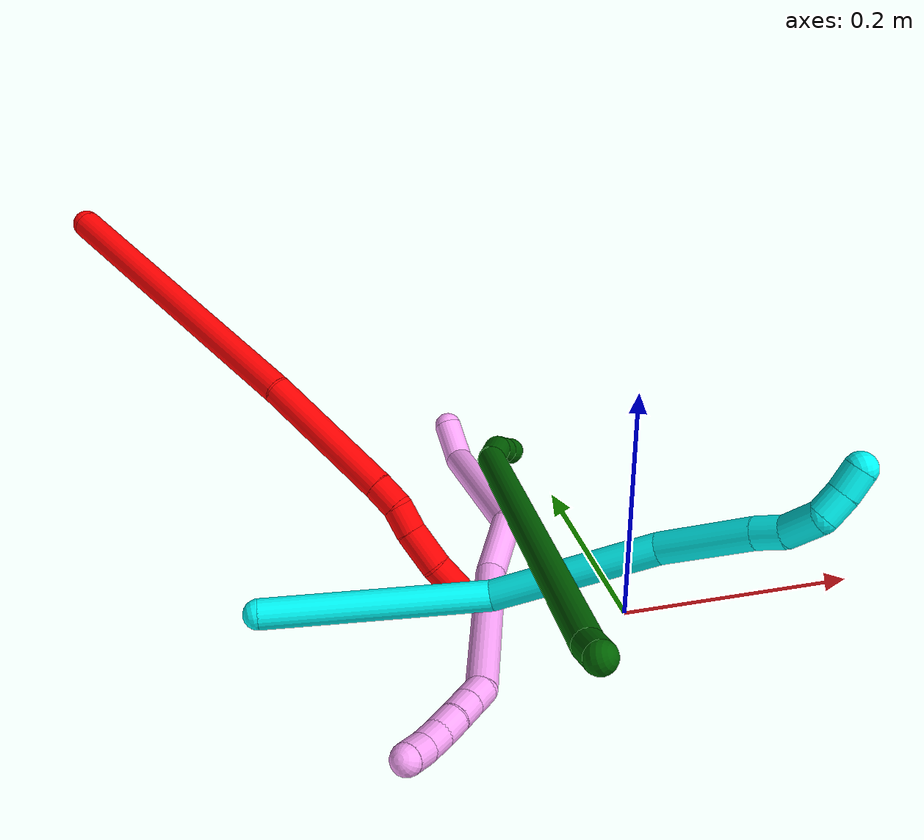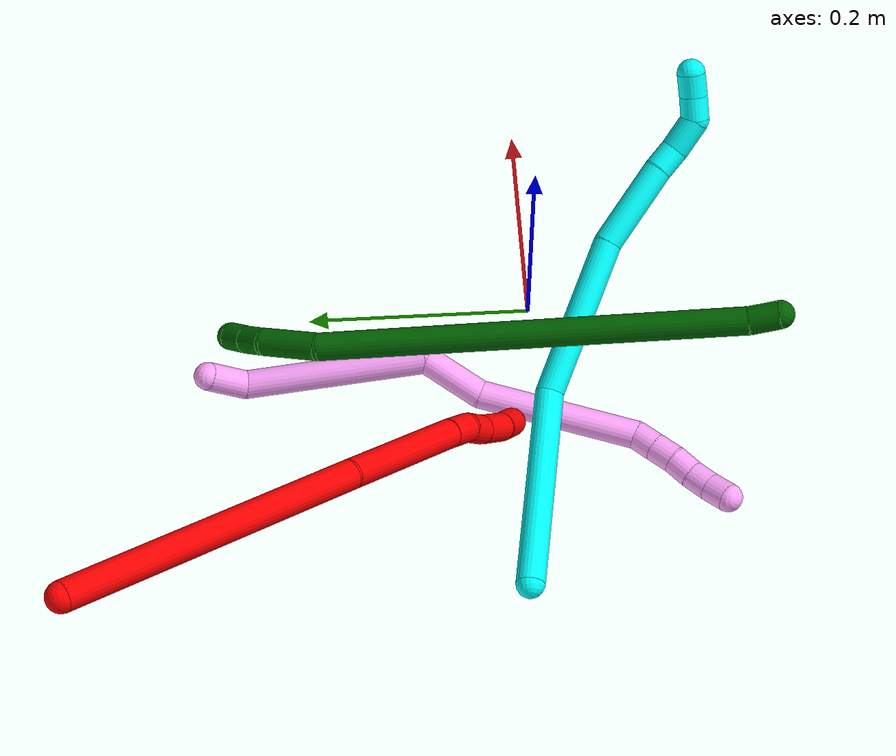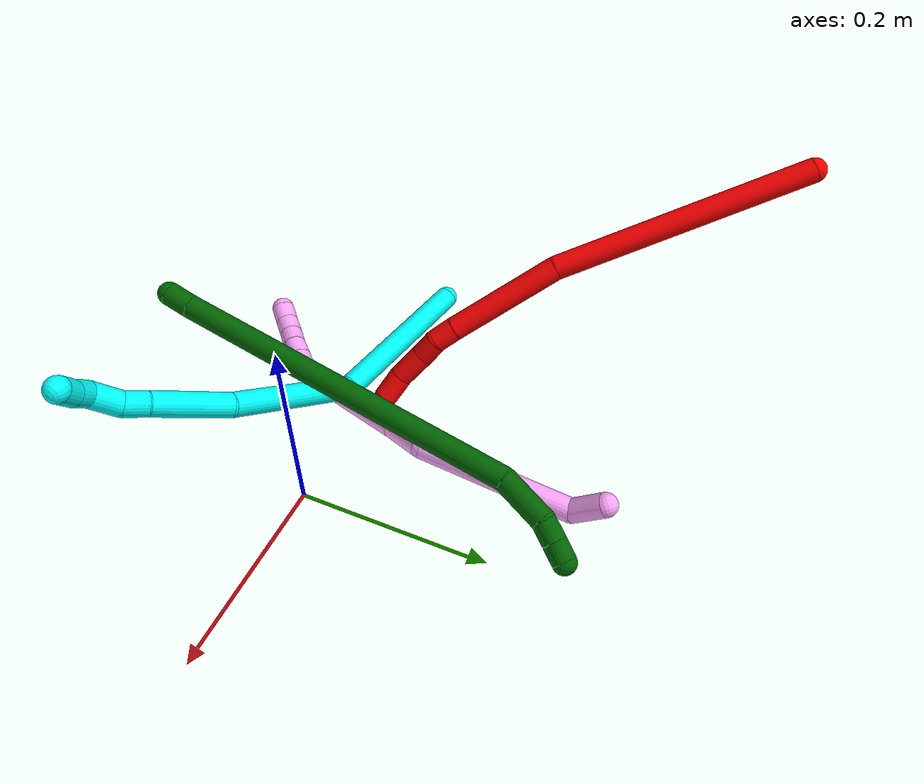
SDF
<sdf version="1.7">
 <world name="default">
  <model name="2">
   <static>0</static>
   <link name="2">
    <collision name="collision-cylinder-e_1_1_4">
     <pose>0.040479 -0.037567 -0.122703 2.8445 0.30556 1.59931</pose>
     <geometry><cylinder><radius>0.0125</radius><length>0.269116</length></cylinder></geometry>
     <surface>
      <friction><ode><mu>1.16</mu><mu2>1.16</mu2><slip1>0</slip1><slip2>0</slip2></ode></friction>
      <contact><ode><kp>1e+06</kp><kd>1</kd><max_vel>0</max_vel><min_depth>0.001</min_depth></ode></contact>
     </surface>
    </collision>
    <visual name="visual-cylinder-e_1_1_4">
     <pose>0.040479 -0.037567 -0.122703 2.8445 0.30556 1.59931</pose>
     <geometry><cylinder><radius>0.0125</radius><length>0.269116</length></cylinder></geometry>
     <material><ambient>1 0 0 1</ambient></material>
    </visual>
    <collision name="collision-cylinder-e_2_4_5">
     <pose>0.092794 -0.083496 -0.303967 2.99975 0.19748 1.89731</pose>
     <geometry><cylinder><radius>0.0125</radius><length>0.120656</length></cylinder></geometry>
     <surface>
      <friction><ode><mu>1.16</mu><mu2>1.16</mu2><slip1>0</slip1><slip2>0</slip2></ode></friction>
      <contact><ode><kp>1e+06</kp><kd>1</kd><max_vel>0</max_vel><min_depth>0.001</min_depth></ode></contact>
     </surface>
    </collision>
    <visual name="visual-cylinder-e_2_4_5">
     <pose>0.092794 -0.083496 -0.303967 2.99975 0.19748 1.89731</pose>
     <geometry><cylinder><radius>0.0125</radius><length>0.120656</length></cylinder></geometry>
     <material><ambient>1 0 0 1</ambient></material>
    </visual>
    <collision name="collision-cylinder-e_3_5_6">
     <pose>0.106157 -0.093345 -0.374198 3.01496 0.129094 1.59006</pose>
     <geometry><cylinder><radius>0.0125</radius><length>0.023725</length></cylinder></geometry>
     <surface>
      <friction><ode><mu>1.16</mu><mu2>1.16</mu2><slip1>0</slip1><slip2>0</slip2></ode></friction>
      <contact><ode><kp>1e+06</kp><kd>1</kd><max_vel>0</max_vel><min_depth>0.001</min_depth></ode></contact>
     </surface>
    </collision>
    <visual name="visual-cylinder-e_3_5_6">
     <pose>0.106157 -0.093345 -0.374198 3.01496 0.129094 1.59006</pose>
     <geometry><cylinder><radius>0.0125</radius><length>0.023725</length></cylinder></geometry>
     <material><ambient>1 0 0 1</ambient></material>
    </visual>
    <collision name="collision-cylinder-e_4_6_7">
     <pose>0.105451 -0.095388 -0.397205 3.09247 -0.194299 -2.64771</pose>
     <geometry><cylinder><radius>0.0125</radius><length>0.023137</length></cylinder></geometry>
     <surface>
      <friction><ode><mu>1.16</mu><mu2>1.16</mu2><slip1>0</slip1><slip2>0</slip2></ode></friction>
      <contact><ode><kp>1e+06</kp><kd>1</kd><max_vel>0</max_vel><min_depth>0.001</min_depth></ode></contact>
     </surface>
    </collision>
    <visual name="visual-cylinder-e_4_6_7">
     <pose>0.105451 -0.095388 -0.397205 3.09247 -0.194299 -2.64771</pose>
     <geometry><cylinder><radius>0.0125</radius><length>0.023137</length></cylinder></geometry>
     <material><ambient>1 0 0 1</ambient></material>
    </visual>
    <collision name="collision-cylinder-e_5_7_8">
     <pose>0.102275 -0.096316 -0.425714 3.12003 -0.054777 -2.39176</pose>
     <geometry><cylinder><radius>0.0125</radius><length>0.034403</length></cylinder></geometry>
     <surface>
      <friction><ode><mu>1.16</mu><mu2>1.16</mu2><slip1>0</slip1><slip2>0</slip2></ode></friction>
      <contact><ode><kp>1e+06</kp><kd>1</kd><max_vel>0</max_vel><min_depth>0.001</min_depth></ode></contact>
     </surface>
    </collision>
    <visual name="visual-cylinder-e_5_7_8">
     <pose>0.102275 -0.096316 -0.425714 3.12003 -0.054777 -2.39176</pose>
     <geometry><cylinder><radius>0.0125</radius><length>0.034403</length></cylinder></geometry>
     <material><ambient>1 0 0 1</ambient></material>
    </visual>
    <collision name="collision-cylinder-e_6_8_2">
     <pose>0.101026 -0.09409 -0.457129 -2.96133 -0.021259 0.234158</pose>
     <geometry><cylinder><radius>0.0125</radius><length>0.028963</length></cylinder></geometry>
     <surface>
      <friction><ode><mu>1.16</mu><mu2>1.16</mu2><slip1>0</slip1><slip2>0</slip2></ode></friction>
      <contact><ode><kp>1e+06</kp><kd>1</kd><max_vel>0</max_vel><min_depth>0.001</min_depth></ode></contact>
     </surface>
    </collision>
    <visual name="visual-cylinder-e_6_8_2">
     <pose>0.101026 -0.09409 -0.457129 -2.96133 -0.021259 0.234158</pose>
     <geometry><cylinder><radius>0.0125</radius><length>0.028963</length></cylinder></geometry>
     <material><ambient>1 0 0 1</ambient></material>
    </visual>
    <collision name="collision-sphere-2">
     <pose>0.100718 -0.091494 -0.471373 0 -0 0</pose>
     <geometry><sphere><radius>0.0125</radius></sphere></geometry>
     <surface>
      <friction><ode><mu>1.16</mu><mu2>1.16</mu2><slip1>0</slip1><slip2>0</slip2></ode></friction>
      <contact><ode><kp>1e+06</kp><kd>1</kd><max_vel>0</max_vel><min_depth>0.001</min_depth></ode></contact>
     </surface>
    </collision>
    <visual name="visual-sphere-2">
     <pose>0.100718 -0.091494 -0.471373 0 -0 0</pose>
     <geometry><sphere><radius>0.0125</radius></sphere></geometry>
     <material><ambient>1 0 0 1</ambient></material>
    </visual>
    <collision name="collision-sphere-4">
     <pose>0.080957 -0.075133 -0.245406 0 -0 0</pose>
     <geometry><sphere><radius>0.0125</radius></sphere></geometry>
     <surface>
      <friction><ode><mu>1.16</mu><mu2>1.16</mu2><slip1>0</slip1><slip2>0</slip2></ode></friction>
      <contact><ode><kp>1e+06</kp><kd>1</kd><max_vel>0</max_vel><min_depth>0.001</min_depth></ode></contact>
     </surface>
    </collision>
    <visual name="visual-sphere-4">
     <pose>0.080957 -0.075133 -0.245406 0 -0 0</pose>
     <geometry><sphere><radius>0.0125</radius></sphere></geometry>
     <material><ambient>1 0 0 1</ambient></material>
    </visual>
    <collision name="collision-sphere-1">
     <geometry><sphere><radius>0.0125</radius></sphere></geometry>
     <surface>
      <friction><ode><mu>1.16</mu><mu2>1.16</mu2><slip1>0</slip1><slip2>0</slip2></ode></friction>
      <contact><ode><kp>1e+06</kp><kd>1</kd><max_vel>0</max_vel><min_depth>0.001</min_depth></ode></contact>
     </surface>
    </collision>
    <visual name="visual-sphere-1">
     <geometry><sphere><radius>0.0125</radius></sphere></geometry>
     <material><ambient>1 0 0 1</ambient></material>
    </visual>
    <collision name="collision-sphere-8">
     <pose>0.101333 -0.096686 -0.442886 0 -0 0</pose>
     <geometry><sphere><radius>0.0125</radius></sphere></geometry>
     <surface>
      <friction><ode><mu>1.16</mu><mu2>1.16</mu2><slip1>0</slip1><slip2>0</slip2></ode></friction>
      <contact><ode><kp>1e+06</kp><kd>1</kd><max_vel>0</max_vel><min_depth>0.001</min_depth></ode></contact>
     </surface>
    </collision>
    <visual name="visual-sphere-8">
     <pose>0.101333 -0.096686 -0.442886 0 -0 0</pose>
     <geometry><sphere><radius>0.0125</radius></sphere></geometry>
     <material><ambient>1 0 0 1</ambient></material>
    </visual>
    <collision name="collision-sphere-5">
     <pose>0.10463 -0.091859 -0.362529 0 -0 0</pose>
     <geometry><sphere><radius>0.0125</radius></sphere></geometry>
     <surface>
      <friction><ode><mu>1.16</mu><mu2>1.16</mu2><slip1>0</slip1><slip2>0</slip2></ode></friction>
      <contact><ode><kp>1e+06</kp><kd>1</kd><max_vel>0</max_vel><min_depth>0.001</min_depth></ode></contact>
     </surface>
    </collision>
    <visual name="visual-sphere-5">
     <pose>0.10463 -0.091859 -0.362529 0 -0 0</pose>
     <geometry><sphere><radius>0.0125</radius></sphere></geometry>
     <material><ambient>1 0 0 1</ambient></material>
    </visual>
    <collision name="collision-sphere-6">
     <pose>0.107684 -0.09483 -0.385868 0 -0 0</pose>
     <geometry><sphere><radius>0.0125</radius></sphere></geometry>
     <surface>
      <friction><ode><mu>1.16</mu><mu2>1.16</mu2><slip1>0</slip1><slip2>0</slip2></ode></friction>
      <contact><ode><kp>1e+06</kp><kd>1</kd><max_vel>0</max_vel><min_depth>0.001</min_depth></ode></contact>
     </surface>
    </collision>
    <visual name="visual-sphere-6">
     <pose>0.107684 -0.09483 -0.385868 0 -0 0</pose>
     <geometry><sphere><radius>0.0125</radius></sphere></geometry>
     <material><ambient>1 0 0 1</ambient></material>
    </visual>
    <collision name="collision-sphere-7">
     <pose>0.103217 -0.095945 -0.408542 0 -0 0</pose>
     <geometry><sphere><radius>0.0125</radius></sphere></geometry>
     <surface>
      <friction><ode><mu>1.16</mu><mu2>1.16</mu2><slip1>0</slip1><slip2>0</slip2></ode></friction>
      <contact><ode><kp>1e+06</kp><kd>1</kd><max_vel>0</max_vel><min_depth>0.001</min_depth></ode></contact>
     </surface>
    </collision>
    <visual name="visual-sphere-7">
     <pose>0.103217 -0.095945 -0.408542 0 -0 0</pose>
     <geometry><sphere><radius>0.0125</radius></sphere></geometry>
     <material><ambient>1 0 0 1</ambient></material>
    </visual>
    <inertial>
     <pose>0.066985 -0.061289 -0.231301 0 -0 0</pose>
     <mass>0.5</mass>
     <inertia>
      <ixx>0.001611</ixx>
      <ixy>0</ixy>
      <ixz>0</ixz>
      <iyy>0.001933</iyy>
      <iyz>0</iyz>
      <izz>-8.1e-05</izz>
     </inertia>
    </inertial>
   </link>
   <pose>-0.397385 0.3776 0.244294 -0.348209 -0.789284 -0.330621</pose>
  </model>
  <model name="3">
   <static>0</static>
   <link name="3">
    <collision name="collision-cylinder-e_1_1_4">
     <pose>0.011995 0.010157 0.090344 -0.111955 0.131186 -0.007362</pose>
     <geometry><cylinder><radius>0.0125</radius><length>0.183403</length></cylinder></geometry>
     <surface>
      <friction><ode><mu>1.16</mu><mu2>1.16</mu2><slip1>0</slip1><slip2>0</slip2></ode></friction>
      <contact><ode><kp>1e+06</kp><kd>1</kd><max_vel>0</max_vel><min_depth>0.001</min_depth></ode></contact>
     </surface>
    </collision>
    <visual name="visual-cylinder-e_1_1_4">
     <pose>0.011995 0.010157 0.090344 -0.111955 0.131186 -0.007362</pose>
     <geometry><cylinder><radius>0.0125</radius><length>0.183403</length></cylinder></geometry>
     <material><ambient>0.003922 1 0.996078 1</ambient></material>
    </visual>
    <collision name="collision-cylinder-e_2_4_5">
     <pose>0.051692 -0.000847 0.24241 0.330285 0.401487 0.067799</pose>
     <geometry><cylinder><radius>0.0125</radius><length>0.141771</length></cylinder></geometry>
     <surface>
      <friction><ode><mu>1.16</mu><mu2>1.16</mu2><slip1>0</slip1><slip2>0</slip2></ode></friction>
      <contact><ode><kp>1e+06</kp><kd>1</kd><max_vel>0</max_vel><min_depth>0.001</min_depth></ode></contact>
     </surface>
    </collision>
    <visual name="visual-cylinder-e_2_4_5">
     <pose>0.051692 -0.000847 0.24241 0.330285 0.401487 0.067799</pose>
     <geometry><cylinder><radius>0.0125</radius><length>0.141771</length></cylinder></geometry>
     <material><ambient>0.003922 1 0.996078 1</ambient></material>
    </visual>
    <collision name="collision-cylinder-e_3_5_6">
     <pose>0.102412 -0.033984 0.333163 0.391268 0.63253 0.12952</pose>
     <geometry><cylinder><radius>0.0125</radius><length>0.077874</length></cylinder></geometry>
     <surface>
      <friction><ode><mu>1.16</mu><mu2>1.16</mu2><slip1>0</slip1><slip2>0</slip2></ode></friction>
      <contact><ode><kp>1e+06</kp><kd>1</kd><max_vel>0</max_vel><min_depth>0.001</min_depth></ode></contact>
     </surface>
    </collision>
    <visual name="visual-cylinder-e_3_5_6">
     <pose>0.102412 -0.033984 0.333163 0.391268 0.63253 0.12952</pose>
     <geometry><cylinder><radius>0.0125</radius><length>0.077874</length></cylinder></geometry>
     <material><ambient>0.003922 1 0.996078 1</ambient></material>
    </visual>
    <collision name="collision-cylinder-e_4_6_7">
     <pose>0.133197 -0.048636 0.370637 0.306805 0.719841 0.116238</pose>
     <geometry><cylinder><radius>0.0125</radius><length>0.02356</length></cylinder></geometry>
     <surface>
      <friction><ode><mu>1.16</mu><mu2>1.16</mu2><slip1>0</slip1><slip2>0</slip2></ode></friction>
      <contact><ode><kp>1e+06</kp><kd>1</kd><max_vel>0</max_vel><min_depth>0.001</min_depth></ode></contact>
     </surface>
    </collision>
    <visual name="visual-cylinder-e_4_6_7">
     <pose>0.133197 -0.048636 0.370637 0.306805 0.719841 0.116238</pose>
     <geometry><cylinder><radius>0.0125</radius><length>0.02356</length></cylinder></geometry>
     <material><ambient>0.003922 1 0.996078 1</ambient></material>
    </visual>
    <collision name="collision-cylinder-e_5_7_8">
     <pose>0.149979 -0.0601 0.388593 0.745919 0.608142 0.244341</pose>
     <geometry><cylinder><radius>0.0125</radius><length>0.031561</length></cylinder></geometry>
     <surface>
      <friction><ode><mu>1.16</mu><mu2>1.16</mu2><slip1>0</slip1><slip2>0</slip2></ode></friction>
      <contact><ode><kp>1e+06</kp><kd>1</kd><max_vel>0</max_vel><min_depth>0.001</min_depth></ode></contact>
     </surface>
    </collision>
    <visual name="visual-cylinder-e_5_7_8">
     <pose>0.149979 -0.0601 0.388593 0.745919 0.608142 0.244341</pose>
     <geometry><cylinder><radius>0.0125</radius><length>0.031561</length></cylinder></geometry>
     <material><ambient>0.003922 1 0.996078 1</ambient></material>
    </visual>
    <collision name="collision-cylinder-e_6_8_9">
     <pose>0.158289 -0.075552 0.406345 0.679995 -0.066593 -0.023564</pose>
     <geometry><cylinder><radius>0.0125</radius><length>0.02124</length></cylinder></geometry>
     <surface>
      <friction><ode><mu>1.16</mu><mu2>1.16</mu2><slip1>0</slip1><slip2>0</slip2></ode></friction>
      <contact><ode><kp>1e+06</kp><kd>1</kd><max_vel>0</max_vel><min_depth>0.001</min_depth></ode></contact>
     </surface>
    </collision>
    <visual name="visual-cylinder-e_6_8_9">
     <pose>0.158289 -0.075552 0.406345 0.679995 -0.066593 -0.023564</pose>
     <geometry><cylinder><radius>0.0125</radius><length>0.02124</length></cylinder></geometry>
     <material><ambient>0.003922 1 0.996078 1</ambient></material>
    </visual>
    <collision name="collision-cylinder-e_7_9_2">
     <pose>0.156534 -0.089636 0.421645 0.810312 -0.101932 -0.043748</pose>
     <geometry><cylinder><radius>0.0125</radius><length>0.020592</length></cylinder></geometry>
     <surface>
      <friction><ode><mu>1.16</mu><mu2>1.16</mu2><slip1>0</slip1><slip2>0</slip2></ode></friction>
      <contact><ode><kp>1e+06</kp><kd>1</kd><max_vel>0</max_vel><min_depth>0.001</min_depth></ode></contact>
     </surface>
    </collision>
    <visual name="visual-cylinder-e_7_9_2">
     <pose>0.156534 -0.089636 0.421645 0.810312 -0.101932 -0.043748</pose>
     <geometry><cylinder><radius>0.0125</radius><length>0.020592</length></cylinder></geometry>
     <material><ambient>0.003922 1 0.996078 1</ambient></material>
    </visual>
    <collision name="collision-sphere-2">
     <pose>0.155487 -0.097057 0.428705 0 -0 0</pose>
     <geometry><sphere><radius>0.0125</radius></sphere></geometry>
     <surface>
      <friction><ode><mu>1.16</mu><mu2>1.16</mu2><slip1>0</slip1><slip2>0</slip2></ode></friction>
      <contact><ode><kp>1e+06</kp><kd>1</kd><max_vel>0</max_vel><min_depth>0.001</min_depth></ode></contact>
     </surface>
    </collision>
    <visual name="visual-sphere-2">
     <pose>0.155487 -0.097057 0.428705 0 -0 0</pose>
     <geometry><sphere><radius>0.0125</radius></sphere></geometry>
     <material><ambient>0.003922 1 0.996078 1</ambient></material>
    </visual>
    <collision name="collision-sphere-9">
     <pose>0.157582 -0.082215 0.414585 0 -0 0</pose>
     <geometry><sphere><radius>0.0125</radius></sphere></geometry>
     <surface>
      <friction><ode><mu>1.16</mu><mu2>1.16</mu2><slip1>0</slip1><slip2>0</slip2></ode></friction>
      <contact><ode><kp>1e+06</kp><kd>1</kd><max_vel>0</max_vel><min_depth>0.001</min_depth></ode></contact>
     </surface>
    </collision>
    <visual name="visual-sphere-9">
     <pose>0.157582 -0.082215 0.414585 0 -0 0</pose>
     <geometry><sphere><radius>0.0125</radius></sphere></geometry>
     <material><ambient>0.003922 1 0.996078 1</ambient></material>
    </visual>
    <collision name="collision-sphere-4">
     <pose>0.023991 0.020314 0.180688 0 -0 0</pose>
     <geometry><sphere><radius>0.0125</radius></sphere></geometry>
     <surface>
      <friction><ode><mu>1.16</mu><mu2>1.16</mu2><slip1>0</slip1><slip2>0</slip2></ode></friction>
      <contact><ode><kp>1e+06</kp><kd>1</kd><max_vel>0</max_vel><min_depth>0.001</min_depth></ode></contact>
     </surface>
    </collision>
    <visual name="visual-sphere-4">
     <pose>0.023991 0.020314 0.180688 0 -0 0</pose>
     <geometry><sphere><radius>0.0125</radius></sphere></geometry>
     <material><ambient>0.003922 1 0.996078 1</ambient></material>
    </visual>
    <collision name="collision-sphere-1">
     <geometry><sphere><radius>0.0125</radius></sphere></geometry>
     <surface>
      <friction><ode><mu>1.16</mu><mu2>1.16</mu2><slip1>0</slip1><slip2>0</slip2></ode></friction>
      <contact><ode><kp>1e+06</kp><kd>1</kd><max_vel>0</max_vel><min_depth>0.001</min_depth></ode></contact>
     </surface>
    </collision>
    <visual name="visual-sphere-1">
     <geometry><sphere><radius>0.0125</radius></sphere></geometry>
     <material><ambient>0.003922 1 0.996078 1</ambient></material>
    </visual>
    <collision name="collision-sphere-8">
     <pose>0.158995 -0.068889 0.398106 0 -0 0</pose>
     <geometry><sphere><radius>0.0125</radius></sphere></geometry>
     <surface>
      <friction><ode><mu>1.16</mu><mu2>1.16</mu2><slip1>0</slip1><slip2>0</slip2></ode></friction>
      <contact><ode><kp>1e+06</kp><kd>1</kd><max_vel>0</max_vel><min_depth>0.001</min_depth></ode></contact>
     </surface>
    </collision>
    <visual name="visual-sphere-8">
     <pose>0.158995 -0.068889 0.398106 0 -0 0</pose>
     <geometry><sphere><radius>0.0125</radius></sphere></geometry>
     <material><ambient>0.003922 1 0.996078 1</ambient></material>
    </visual>
    <collision name="collision-sphere-5">
     <pose>0.079393 -0.022008 0.304132 0 -0 0</pose>
     <geometry><sphere><radius>0.0125</radius></sphere></geometry>
     <surface>
      <friction><ode><mu>1.16</mu><mu2>1.16</mu2><slip1>0</slip1><slip2>0</slip2></ode></friction>
      <contact><ode><kp>1e+06</kp><kd>1</kd><max_vel>0</max_vel><min_depth>0.001</min_depth></ode></contact>
     </surface>
    </collision>
    <visual name="visual-sphere-5">
     <pose>0.079393 -0.022008 0.304132 0 -0 0</pose>
     <geometry><sphere><radius>0.0125</radius></sphere></geometry>
     <material><ambient>0.003922 1 0.996078 1</ambient></material>
    </visual>
    <collision name="collision-sphere-6">
     <pose>0.125431 -0.045961 0.362194 0 -0 0</pose>
     <geometry><sphere><radius>0.0125</radius></sphere></geometry>
     <surface>
      <friction><ode><mu>1.16</mu><mu2>1.16</mu2><slip1>0</slip1><slip2>0</slip2></ode></friction>
      <contact><ode><kp>1e+06</kp><kd>1</kd><max_vel>0</max_vel><min_depth>0.001</min_depth></ode></contact>
     </surface>
    </collision>
    <visual name="visual-sphere-6">
     <pose>0.125431 -0.045961 0.362194 0 -0 0</pose>
     <geometry><sphere><radius>0.0125</radius></sphere></geometry>
     <material><ambient>0.003922 1 0.996078 1</ambient></material>
    </visual>
    <collision name="collision-sphere-7">
     <pose>0.140963 -0.051311 0.379081 0 -0 0</pose>
     <geometry><sphere><radius>0.0125</radius></sphere></geometry>
     <surface>
      <friction><ode><mu>1.16</mu><mu2>1.16</mu2><slip1>0</slip1><slip2>0</slip2></ode></friction>
      <contact><ode><kp>1e+06</kp><kd>1</kd><max_vel>0</max_vel><min_depth>0.001</min_depth></ode></contact>
     </surface>
    </collision>
    <visual name="visual-sphere-7">
     <pose>0.140963 -0.051311 0.379081 0 -0 0</pose>
     <geometry><sphere><radius>0.0125</radius></sphere></geometry>
     <material><ambient>0.003922 1 0.996078 1</ambient></material>
    </visual>
    <inertial>
     <pose>0.063921 -0.014794 0.230381 0 -0 0</pose>
     <mass>0.5</mass>
     <inertia>
      <ixx>0.00081</ixx>
      <ixy>0</ixy>
      <ixz>0</ixz>
      <iyy>0.000806</iyy>
      <iyz>0</iyz>
      <izz>-0.000125</izz>
     </inertia>
    </inertial>
   </link>
   <pose>-0.297037 0.022958 0.034062 -1.41952 -0.022528 -1.60954</pose>
  </model>
  <model name="4">
   <static>0</static>
   <link name="4">
    <collision name="collision-cylinder-e_1_1_4">
     <pose>-0.009699 -0.016584 -0.001418 1.6561 -0.527582 -0.572189</pose>
     <geometry><cylinder><radius>0.0125</radius><length>0.038529</length></cylinder></geometry>
     <surface>
      <friction><ode><mu>1.16</mu><mu2>1.16</mu2><slip1>0</slip1><slip2>0</slip2></ode></friction>
      <contact><ode><kp>1e+06</kp><kd>1</kd><max_vel>0</max_vel><min_depth>0.001</min_depth></ode></contact>
     </surface>
    </collision>
    <visual name="visual-cylinder-e_1_1_4">
     <pose>-0.009699 -0.016584 -0.001418 1.6561 -0.527582 -0.572189</pose>
     <geometry><cylinder><radius>0.0125</radius><length>0.038529</length></cylinder></geometry>
     <material><ambient>1 0.65098 0.996078 1</ambient></material>
    </visual>
    <collision name="collision-cylinder-e_2_4_5">
     <pose>-0.072358 -0.065698 -0.054284 2.57777 -0.716039 -1.82411</pose>
     <geometry><cylinder><radius>0.0125</radius><length>0.161368</length></cylinder></geometry>
     <surface>
      <friction><ode><mu>1.16</mu><mu2>1.16</mu2><slip1>0</slip1><slip2>0</slip2></ode></friction>
      <contact><ode><kp>1e+06</kp><kd>1</kd><max_vel>0</max_vel><min_depth>0.001</min_depth></ode></contact>
     </surface>
    </collision>
    <visual name="visual-cylinder-e_2_4_5">
     <pose>-0.072358 -0.065698 -0.054284 2.57777 -0.716039 -1.82411</pose>
     <geometry><cylinder><radius>0.0125</radius><length>0.161368</length></cylinder></geometry>
     <material><ambient>1 0.65098 0.996078 1</ambient></material>
    </visual>
    <collision name="collision-cylinder-e_3_5_6">
     <pose>-0.128258 -0.122017 -0.120862 2.13729 -0.103875 -0.188781</pose>
     <geometry><cylinder><radius>0.0125</radius><length>0.056692</length></cylinder></geometry>
     <surface>
      <friction><ode><mu>1.16</mu><mu2>1.16</mu2><slip1>0</slip1><slip2>0</slip2></ode></friction>
      <contact><ode><kp>1e+06</kp><kd>1</kd><max_vel>0</max_vel><min_depth>0.001</min_depth></ode></contact>
     </surface>
    </collision>
    <visual name="visual-cylinder-e_3_5_6">
     <pose>-0.128258 -0.122017 -0.120862 2.13729 -0.103875 -0.188781</pose>
     <geometry><cylinder><radius>0.0125</radius><length>0.056692</length></cylinder></geometry>
     <material><ambient>1 0.65098 0.996078 1</ambient></material>
    </visual>
    <collision name="collision-cylinder-e_4_6_7">
     <pose>-0.156318 -0.191676 -0.183775 2.37661 -0.362501 -0.854887</pose>
     <geometry><cylinder><radius>0.0125</radius><length>0.141679</length></cylinder></geometry>
     <surface>
      <friction><ode><mu>1.16</mu><mu2>1.16</mu2><slip1>0</slip1><slip2>0</slip2></ode></friction>
      <contact><ode><kp>1e+06</kp><kd>1</kd><max_vel>0</max_vel><min_depth>0.001</min_depth></ode></contact>
     </surface>
    </collision>
    <visual name="visual-cylinder-e_4_6_7">
     <pose>-0.156318 -0.191676 -0.183775 2.37661 -0.362501 -0.854887</pose>
     <geometry><cylinder><radius>0.0125</radius><length>0.141679</length></cylinder></geometry>
     <material><ambient>1 0.65098 0.996078 1</ambient></material>
    </visual>
    <collision name="collision-cylinder-e_5_7_8">
     <pose>-0.180814 -0.243049 -0.240299 2.57969 0.060431 0.208708</pose>
     <geometry><cylinder><radius>0.0125</radius><length>0.020698</length></cylinder></geometry>
     <surface>
      <friction><ode><mu>1.16</mu><mu2>1.16</mu2><slip1>0</slip1><slip2>0</slip2></ode></friction>
      <contact><ode><kp>1e+06</kp><kd>1</kd><max_vel>0</max_vel><min_depth>0.001</min_depth></ode></contact>
     </surface>
    </collision>
    <visual name="visual-cylinder-e_5_7_8">
     <pose>-0.180814 -0.243049 -0.240299 2.57969 0.060431 0.208708</pose>
     <geometry><cylinder><radius>0.0125</radius><length>0.020698</length></cylinder></geometry>
     <material><ambient>1 0.65098 0.996078 1</ambient></material>
    </visual>
    <collision name="collision-cylinder-e_6_8_9">
     <pose>-0.179653 -0.254057 -0.25771 2.57589 0.052108 0.178847</pose>
     <geometry><cylinder><radius>0.0125</radius><length>0.020566</length></cylinder></geometry>
     <surface>
      <friction><ode><mu>1.16</mu><mu2>1.16</mu2><slip1>0</slip1><slip2>0</slip2></ode></friction>
      <contact><ode><kp>1e+06</kp><kd>1</kd><max_vel>0</max_vel><min_depth>0.001</min_depth></ode></contact>
     </surface>
    </collision>
    <visual name="visual-cylinder-e_6_8_9">
     <pose>-0.179653 -0.254057 -0.25771 2.57589 0.052108 0.178847</pose>
     <geometry><cylinder><radius>0.0125</radius><length>0.020566</length></cylinder></geometry>
     <material><ambient>1 0.65098 0.996078 1</ambient></material>
    </visual>
    <collision name="collision-cylinder-e_7_9_10">
     <pose>-0.177576 -0.265763 -0.274329 2.47913 0.151674 0.434897</pose>
     <geometry><cylinder><radius>0.0125</radius><length>0.0204</length></cylinder></geometry>
     <surface>
      <friction><ode><mu>1.16</mu><mu2>1.16</mu2><slip1>0</slip1><slip2>0</slip2></ode></friction>
      <contact><ode><kp>1e+06</kp><kd>1</kd><max_vel>0</max_vel><min_depth>0.001</min_depth></ode></contact>
     </surface>
    </collision>
    <visual name="visual-cylinder-e_7_9_10">
     <pose>-0.177576 -0.265763 -0.274329 2.47913 0.151674 0.434897</pose>
     <geometry><cylinder><radius>0.0125</radius><length>0.0204</length></cylinder></geometry>
     <material><ambient>1 0.65098 0.996078 1</ambient></material>
    </visual>
    <collision name="collision-cylinder-e_8_10_11">
     <pose>-0.175054 -0.27699 -0.290902 2.61392 0.097965 0.35904</pose>
     <geometry><cylinder><radius>0.0125</radius><length>0.020056</length></cylinder></geometry>
     <surface>
      <friction><ode><mu>1.16</mu><mu2>1.16</mu2><slip1>0</slip1><slip2>0</slip2></ode></friction>
      <contact><ode><kp>1e+06</kp><kd>1</kd><max_vel>0</max_vel><min_depth>0.001</min_depth></ode></contact>
     </surface>
    </collision>
    <visual name="visual-cylinder-e_8_10_11">
     <pose>-0.175054 -0.27699 -0.290902 2.61392 0.097965 0.35904</pose>
     <geometry><cylinder><radius>0.0125</radius><length>0.020056</length></cylinder></geometry>
     <material><ambient>1 0.65098 0.996078 1</ambient></material>
    </visual>
    <collision name="collision-cylinder-e_9_11_2">
     <pose>-0.173317 -0.285724 -0.308787 2.76078 0.075722 0.388117</pose>
     <geometry><cylinder><radius>0.0125</radius><length>0.020013</length></cylinder></geometry>
     <surface>
      <friction><ode><mu>1.16</mu><mu2>1.16</mu2><slip1>0</slip1><slip2>0</slip2></ode></friction>
      <contact><ode><kp>1e+06</kp><kd>1</kd><max_vel>0</max_vel><min_depth>0.001</min_depth></ode></contact>
     </surface>
    </collision>
    <visual name="visual-cylinder-e_9_11_2">
     <pose>-0.173317 -0.285724 -0.308787 2.76078 0.075722 0.388117</pose>
     <geometry><cylinder><radius>0.0125</radius><length>0.020013</length></cylinder></geometry>
     <material><ambient>1 0.65098 0.996078 1</ambient></material>
    </visual>
    <collision name="collision-sphere-2">
     <pose>-0.17256 -0.289432 -0.31805 0 -0 0</pose>
     <geometry><sphere><radius>0.0125</radius></sphere></geometry>
     <surface>
      <friction><ode><mu>1.16</mu><mu2>1.16</mu2><slip1>0</slip1><slip2>0</slip2></ode></friction>
      <contact><ode><kp>1e+06</kp><kd>1</kd><max_vel>0</max_vel><min_depth>0.001</min_depth></ode></contact>
     </surface>
    </collision>
    <visual name="visual-sphere-2">
     <pose>-0.17256 -0.289432 -0.31805 0 -0 0</pose>
     <geometry><sphere><radius>0.0125</radius></sphere></geometry>
     <material><ambient>1 0.65098 0.996078 1</ambient></material>
    </visual>
    <collision name="collision-sphere-11">
     <pose>-0.174074 -0.282015 -0.299524 0 -0 0</pose>
     <geometry><sphere><radius>0.0125</radius></sphere></geometry>
     <surface>
      <friction><ode><mu>1.16</mu><mu2>1.16</mu2><slip1>0</slip1><slip2>0</slip2></ode></friction>
      <contact><ode><kp>1e+06</kp><kd>1</kd><max_vel>0</max_vel><min_depth>0.001</min_depth></ode></contact>
     </surface>
    </collision>
    <visual name="visual-sphere-11">
     <pose>-0.174074 -0.282015 -0.299524 0 -0 0</pose>
     <geometry><sphere><radius>0.0125</radius></sphere></geometry>
     <material><ambient>1 0.65098 0.996078 1</ambient></material>
    </visual>
    <collision name="collision-sphere-10">
     <pose>-0.176035 -0.271965 -0.28228 0 -0 0</pose>
     <geometry><sphere><radius>0.0125</radius></sphere></geometry>
     <surface>
      <friction><ode><mu>1.16</mu><mu2>1.16</mu2><slip1>0</slip1><slip2>0</slip2></ode></friction>
      <contact><ode><kp>1e+06</kp><kd>1</kd><max_vel>0</max_vel><min_depth>0.001</min_depth></ode></contact>
     </surface>
    </collision>
    <visual name="visual-sphere-10">
     <pose>-0.176035 -0.271965 -0.28228 0 -0 0</pose>
     <geometry><sphere><radius>0.0125</radius></sphere></geometry>
     <material><ambient>1 0.65098 0.996078 1</ambient></material>
    </visual>
    <collision name="collision-sphere-9">
     <pose>-0.179118 -0.259562 -0.266379 0 -0 0</pose>
     <geometry><sphere><radius>0.0125</radius></sphere></geometry>
     <surface>
      <friction><ode><mu>1.16</mu><mu2>1.16</mu2><slip1>0</slip1><slip2>0</slip2></ode></friction>
      <contact><ode><kp>1e+06</kp><kd>1</kd><max_vel>0</max_vel><min_depth>0.001</min_depth></ode></contact>
     </surface>
    </collision>
    <visual name="visual-sphere-9">
     <pose>-0.179118 -0.259562 -0.266379 0 -0 0</pose>
     <geometry><sphere><radius>0.0125</radius></sphere></geometry>
     <material><ambient>1 0.65098 0.996078 1</ambient></material>
    </visual>
    <collision name="collision-sphere-4">
     <pose>-0.019397 -0.033169 -0.002836 0 -0 0</pose>
     <geometry><sphere><radius>0.0125</radius></sphere></geometry>
     <surface>
      <friction><ode><mu>1.16</mu><mu2>1.16</mu2><slip1>0</slip1><slip2>0</slip2></ode></friction>
      <contact><ode><kp>1e+06</kp><kd>1</kd><max_vel>0</max_vel><min_depth>0.001</min_depth></ode></contact>
     </surface>
    </collision>
    <visual name="visual-sphere-4">
     <pose>-0.019397 -0.033169 -0.002836 0 -0 0</pose>
     <geometry><sphere><radius>0.0125</radius></sphere></geometry>
     <material><ambient>1 0.65098 0.996078 1</ambient></material>
    </visual>
    <collision name="collision-sphere-1">
     <geometry><sphere><radius>0.0125</radius></sphere></geometry>
     <surface>
      <friction><ode><mu>1.16</mu><mu2>1.16</mu2><slip1>0</slip1><slip2>0</slip2></ode></friction>
      <contact><ode><kp>1e+06</kp><kd>1</kd><max_vel>0</max_vel><min_depth>0.001</min_depth></ode></contact>
     </surface>
    </collision>
    <visual name="visual-sphere-1">
     <geometry><sphere><radius>0.0125</radius></sphere></geometry>
     <material><ambient>1 0.65098 0.996078 1</ambient></material>
    </visual>
    <collision name="collision-sphere-8">
     <pose>-0.180189 -0.248553 -0.249041 0 -0 0</pose>
     <geometry><sphere><radius>0.0125</radius></sphere></geometry>
     <surface>
      <friction><ode><mu>1.16</mu><mu2>1.16</mu2><slip1>0</slip1><slip2>0</slip2></ode></friction>
      <contact><ode><kp>1e+06</kp><kd>1</kd><max_vel>0</max_vel><min_depth>0.001</min_depth></ode></contact>
     </surface>
    </collision>
    <visual name="visual-sphere-8">
     <pose>-0.180189 -0.248553 -0.249041 0 -0 0</pose>
     <geometry><sphere><radius>0.0125</radius></sphere></geometry>
     <material><ambient>1 0.65098 0.996078 1</ambient></material>
    </visual>
    <collision name="collision-sphere-5">
     <pose>-0.125319 -0.098227 -0.105731 0 -0 0</pose>
     <geometry><sphere><radius>0.0125</radius></sphere></geometry>
     <surface>
      <friction><ode><mu>1.16</mu><mu2>1.16</mu2><slip1>0</slip1><slip2>0</slip2></ode></friction>
      <contact><ode><kp>1e+06</kp><kd>1</kd><max_vel>0</max_vel><min_depth>0.001</min_depth></ode></contact>
     </surface>
    </collision>
    <visual name="visual-sphere-5">
     <pose>-0.125319 -0.098227 -0.105731 0 -0 0</pose>
     <geometry><sphere><radius>0.0125</radius></sphere></geometry>
     <material><ambient>1 0.65098 0.996078 1</ambient></material>
    </visual>
    <collision name="collision-sphere-6">
     <pose>-0.131198 -0.145806 -0.135993 0 -0 0</pose>
     <geometry><sphere><radius>0.0125</radius></sphere></geometry>
     <surface>
      <friction><ode><mu>1.16</mu><mu2>1.16</mu2><slip1>0</slip1><slip2>0</slip2></ode></friction>
      <contact><ode><kp>1e+06</kp><kd>1</kd><max_vel>0</max_vel><min_depth>0.001</min_depth></ode></contact>
     </surface>
    </collision>
    <visual name="visual-sphere-6">
     <pose>-0.131198 -0.145806 -0.135993 0 -0 0</pose>
     <geometry><sphere><radius>0.0125</radius></sphere></geometry>
     <material><ambient>1 0.65098 0.996078 1</ambient></material>
    </visual>
    <collision name="collision-sphere-7">
     <pose>-0.181439 -0.237546 -0.231557 0 -0 0</pose>
     <geometry><sphere><radius>0.0125</radius></sphere></geometry>
     <surface>
      <friction><ode><mu>1.16</mu><mu2>1.16</mu2><slip1>0</slip1><slip2>0</slip2></ode></friction>
      <contact><ode><kp>1e+06</kp><kd>1</kd><max_vel>0</max_vel><min_depth>0.001</min_depth></ode></contact>
     </surface>
    </collision>
    <visual name="visual-sphere-7">
     <pose>-0.181439 -0.237546 -0.231557 0 -0 0</pose>
     <geometry><sphere><radius>0.0125</radius></sphere></geometry>
     <material><ambient>1 0.65098 0.996078 1</ambient></material>
    </visual>
    <inertial>
     <pose>-0.119015 -0.14453 -0.139175 0 -0 0</pose>
     <mass>0.5</mass>
     <inertia>
      <ixx>-0.000339</ixx>
      <ixy>0</ixy>
      <ixz>0</ixz>
      <iyy>-0.000345</iyy>
      <iyz>0</iyz>
      <izz>0.000624</izz>
     </inertia>
    </inertial>
   </link>
   <pose>-0.080381 0.288503 0.041141 2.19957 0.142198 2.44901</pose>
  </model>
  <model name="6">
   <static>0</static>
   <link name="6">
    <collision name="collision-cylinder-e_1_1_4">
     <pose>0.00139 0.010304 0.008752 -0.866672 0.102435 -0.047426</pose>
     <geometry><cylinder><radius>0.0125</radius><length>0.027182</length></cylinder></geometry>
     <surface>
      <friction><ode><mu>1.16</mu><mu2>1.16</mu2><slip1>0</slip1><slip2>0</slip2></ode></friction>
      <contact><ode><kp>1e+06</kp><kd>1</kd><max_vel>0</max_vel><min_depth>0.001</min_depth></ode></contact>
     </surface>
    </collision>
    <visual name="visual-cylinder-e_1_1_4">
     <pose>0.00139 0.010304 0.008752 -0.866672 0.102435 -0.047426</pose>
     <geometry><cylinder><radius>0.0125</radius><length>0.027182</length></cylinder></geometry>
     <material><ambient>0 0.392157 0.003922 1</ambient></material>
    </visual>
    <collision name="collision-cylinder-e_2_4_5">
     <pose>0.047686 0.170694 0.121073 -0.966767 0.241457 -0.127193</pose>
     <geometry><cylinder><radius>0.0125</radius><length>0.375599</length></cylinder></geometry>
     <surface>
      <friction><ode><mu>1.16</mu><mu2>1.16</mu2><slip1>0</slip1><slip2>0</slip2></ode></friction>
      <contact><ode><kp>1e+06</kp><kd>1</kd><max_vel>0</max_vel><min_depth>0.001</min_depth></ode></contact>
     </surface>
    </collision>
    <visual name="visual-cylinder-e_2_4_5">
     <pose>0.047686 0.170694 0.121073 -0.966767 0.241457 -0.127193</pose>
     <geometry><cylinder><radius>0.0125</radius><length>0.375599</length></cylinder></geometry>
     <material><ambient>0 0.392157 0.003922 1</ambient></material>
    </visual>
    <collision name="collision-cylinder-e_3_5_6">
     <pose>0.092749 0.34542 0.235018 -1.17227 0.005874 -0.0039</pose>
     <geometry><cylinder><radius>0.0125</radius><length>0.053473</length></cylinder></geometry>
     <surface>
      <friction><ode><mu>1.16</mu><mu2>1.16</mu2><slip1>0</slip1><slip2>0</slip2></ode></friction>
      <contact><ode><kp>1e+06</kp><kd>1</kd><max_vel>0</max_vel><min_depth>0.001</min_depth></ode></contact>
     </surface>
    </collision>
    <visual name="visual-cylinder-e_3_5_6">
     <pose>0.092749 0.34542 0.235018 -1.17227 0.005874 -0.0039</pose>
     <geometry><cylinder><radius>0.0125</radius><length>0.053473</length></cylinder></geometry>
     <material><ambient>0 0.392157 0.003922 1</ambient></material>
    </visual>
    <collision name="collision-cylinder-e_4_6_7">
     <pose>0.089653 0.380468 0.248843 -1.25067 -0.288395 0.208911</pose>
     <geometry><cylinder><radius>0.0125</radius><length>0.022873</length></cylinder></geometry>
     <surface>
      <friction><ode><mu>1.16</mu><mu2>1.16</mu2><slip1>0</slip1><slip2>0</slip2></ode></friction>
      <contact><ode><kp>1e+06</kp><kd>1</kd><max_vel>0</max_vel><min_depth>0.001</min_depth></ode></contact>
     </surface>
    </collision>
    <visual name="visual-cylinder-e_4_6_7">
     <pose>0.089653 0.380468 0.248843 -1.25067 -0.288395 0.208911</pose>
     <geometry><cylinder><radius>0.0125</radius><length>0.022873</length></cylinder></geometry>
     <material><ambient>0 0.392157 0.003922 1</ambient></material>
    </visual>
    <collision name="collision-cylinder-e_5_7_2">
     <pose>0.08354 0.400579 0.254859 -1.31238 -0.277598 0.214315</pose>
     <geometry><cylinder><radius>0.0125</radius><length>0.020873</length></cylinder></geometry>
     <surface>
      <friction><ode><mu>1.16</mu><mu2>1.16</mu2><slip1>0</slip1><slip2>0</slip2></ode></friction>
      <contact><ode><kp>1e+06</kp><kd>1</kd><max_vel>0</max_vel><min_depth>0.001</min_depth></ode></contact>
     </surface>
    </collision>
    <visual name="visual-cylinder-e_5_7_2">
     <pose>0.08354 0.400579 0.254859 -1.31238 -0.277598 0.214315</pose>
     <geometry><cylinder><radius>0.0125</radius><length>0.020873</length></cylinder></geometry>
     <material><ambient>0 0.392157 0.003922 1</ambient></material>
    </visual>
    <collision name="collision-sphere-2">
     <pose>0.08068 0.410283 0.257423 0 -0 0</pose>
     <geometry><sphere><radius>0.0125</radius></sphere></geometry>
     <surface>
      <friction><ode><mu>1.16</mu><mu2>1.16</mu2><slip1>0</slip1><slip2>0</slip2></ode></friction>
      <contact><ode><kp>1e+06</kp><kd>1</kd><max_vel>0</max_vel><min_depth>0.001</min_depth></ode></contact>
     </surface>
    </collision>
    <visual name="visual-sphere-2">
     <pose>0.08068 0.410283 0.257423 0 -0 0</pose>
     <geometry><sphere><radius>0.0125</radius></sphere></geometry>
     <material><ambient>0 0.392157 0.003922 1</ambient></material>
    </visual>
    <collision name="collision-sphere-7">
     <pose>0.0864 0.390875 0.252294 0 -0 0</pose>
     <geometry><sphere><radius>0.0125</radius></sphere></geometry>
     <surface>
      <friction><ode><mu>1.16</mu><mu2>1.16</mu2><slip1>0</slip1><slip2>0</slip2></ode></friction>
      <contact><ode><kp>1e+06</kp><kd>1</kd><max_vel>0</max_vel><min_depth>0.001</min_depth></ode></contact>
     </surface>
    </collision>
    <visual name="visual-sphere-7">
     <pose>0.0864 0.390875 0.252294 0 -0 0</pose>
     <geometry><sphere><radius>0.0125</radius></sphere></geometry>
     <material><ambient>0 0.392157 0.003922 1</ambient></material>
    </visual>
    <collision name="collision-sphere-6">
     <pose>0.092906 0.370061 0.245393 0 -0 0</pose>
     <geometry><sphere><radius>0.0125</radius></sphere></geometry>
     <surface>
      <friction><ode><mu>1.16</mu><mu2>1.16</mu2><slip1>0</slip1><slip2>0</slip2></ode></friction>
      <contact><ode><kp>1e+06</kp><kd>1</kd><max_vel>0</max_vel><min_depth>0.001</min_depth></ode></contact>
     </surface>
    </collision>
    <visual name="visual-sphere-6">
     <pose>0.092906 0.370061 0.245393 0 -0 0</pose>
     <geometry><sphere><radius>0.0125</radius></sphere></geometry>
     <material><ambient>0 0.392157 0.003922 1</ambient></material>
    </visual>
    <collision name="collision-sphere-5">
     <pose>0.092592 0.320779 0.224642 0 -0 0</pose>
     <geometry><sphere><radius>0.0125</radius></sphere></geometry>
     <surface>
      <friction><ode><mu>1.16</mu><mu2>1.16</mu2><slip1>0</slip1><slip2>0</slip2></ode></friction>
      <contact><ode><kp>1e+06</kp><kd>1</kd><max_vel>0</max_vel><min_depth>0.001</min_depth></ode></contact>
     </surface>
    </collision>
    <visual name="visual-sphere-5">
     <pose>0.092592 0.320779 0.224642 0 -0 0</pose>
     <geometry><sphere><radius>0.0125</radius></sphere></geometry>
     <material><ambient>0 0.392157 0.003922 1</ambient></material>
    </visual>
    <collision name="collision-sphere-1">
     <geometry><sphere><radius>0.0125</radius></sphere></geometry>
     <surface>
      <friction><ode><mu>1.16</mu><mu2>1.16</mu2><slip1>0</slip1><slip2>0</slip2></ode></friction>
      <contact><ode><kp>1e+06</kp><kd>1</kd><max_vel>0</max_vel><min_depth>0.001</min_depth></ode></contact>
     </surface>
    </collision>
    <visual name="visual-sphere-1">
     <geometry><sphere><radius>0.0125</radius></sphere></geometry>
     <material><ambient>0 0.392157 0.003922 1</ambient></material>
    </visual>
    <collision name="collision-sphere-4">
     <pose>0.00278 0.020609 0.017504 0 -0 0</pose>
     <geometry><sphere><radius>0.0125</radius></sphere></geometry>
     <surface>
      <friction><ode><mu>1.16</mu><mu2>1.16</mu2><slip1>0</slip1><slip2>0</slip2></ode></friction>
      <contact><ode><kp>1e+06</kp><kd>1</kd><max_vel>0</max_vel><min_depth>0.001</min_depth></ode></contact>
     </surface>
    </collision>
    <visual name="visual-sphere-4">
     <pose>0.00278 0.020609 0.017504 0 -0 0</pose>
     <geometry><sphere><radius>0.0125</radius></sphere></geometry>
     <material><ambient>0 0.392157 0.003922 1</ambient></material>
    </visual>
    <inertial>
     <pose>0.053405 0.199854 0.138583 0 -0 0</pose>
     <mass>0.5</mass>
     <inertia>
      <ixx>0.003749</ixx>
      <ixy>0</ixy>
      <ixz>0</ixz>
      <iyy>0.002102</iyy>
      <iyz>0</iyz>
      <izz>-0.004598</izz>
     </inertia>
    </inertial>
   </link>
   <pose>-0.098636 -0.203322 0.119506 -2.89031 -1.04986 2.17736</pose>
  </model>
 </world>
</sdf>
